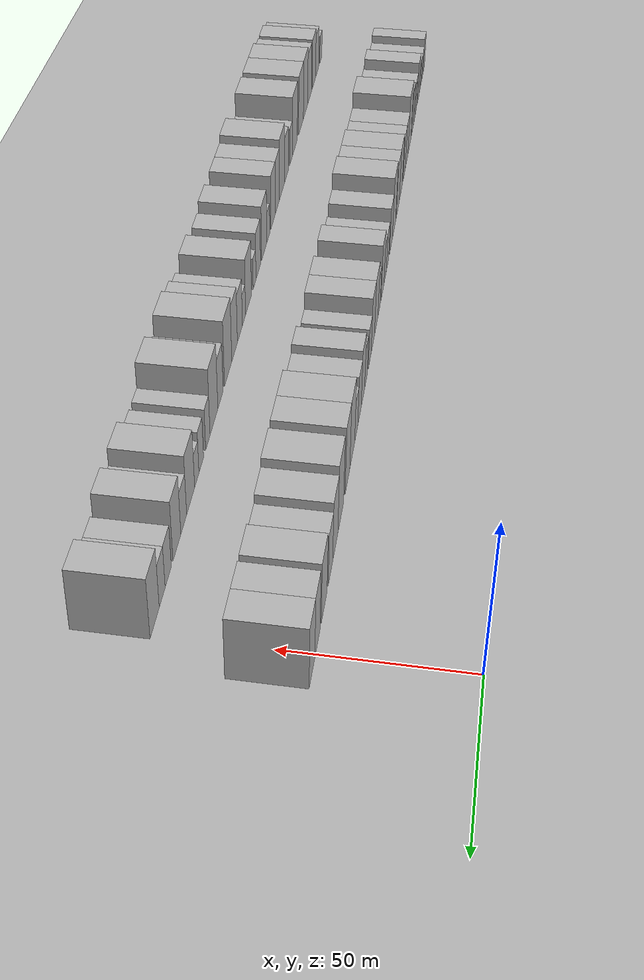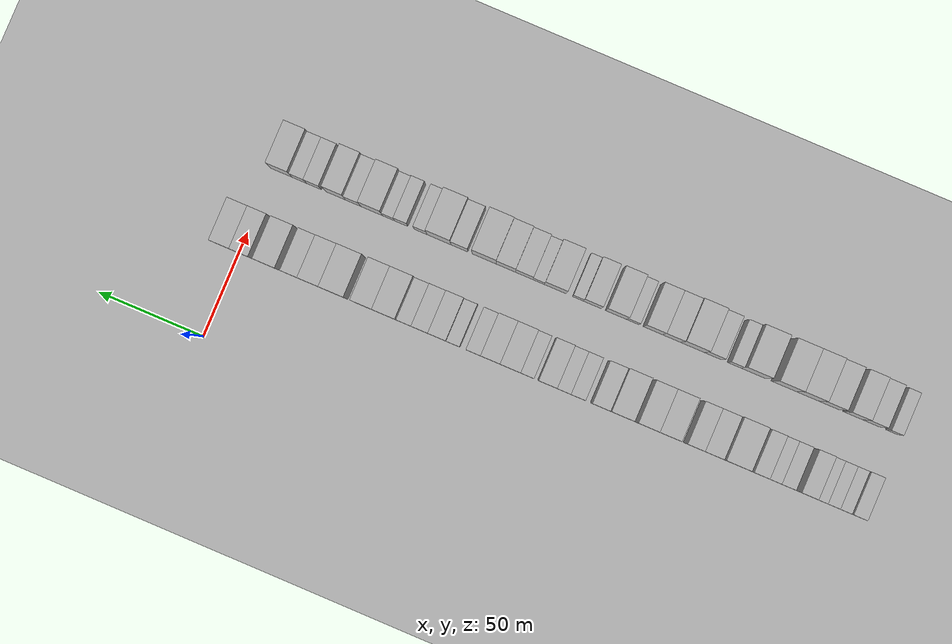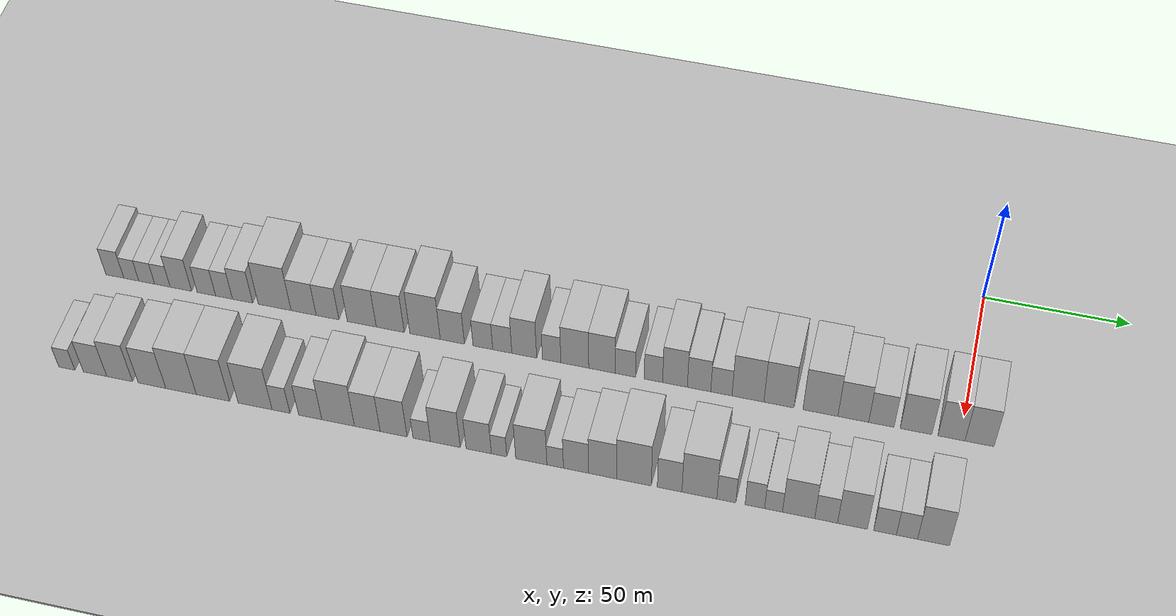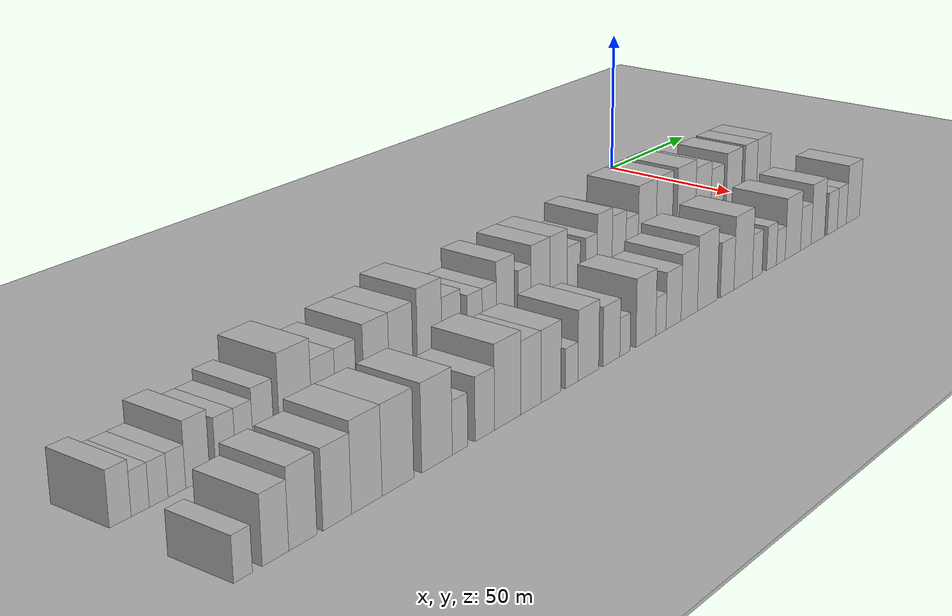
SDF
<sdf version="1.6">
 <world name="default">
  <include><name>ground_plane_1</name><uri>model://HANNAS_ground_plane</uri></include>
  <include>
   <name>ground_plane_2</name>
   <uri>model://HANNAS_ground_plane</uri>
   <pose>100 0 0  0 0 0</pose>
  </include>
  <model name="building_1">
   <static>1</static>
   <pose>50.0000 -293.7207 0 0.000000 0.000000 0.000000</pose>
   <link name="link">
    <pose>0 0 7.50 0 0 0</pose>
    <collision name="collision"><geometry><box><size>20.0000 6.5586 15.0000</size></box></geometry></collision>
    <visual name="visual">
     <cast_shadows>0</cast_shadows>
     <geometry><box><size>20.0000 6.5586 15.0000</size></box></geometry>
     <material>
      <script>
       <uri>model://HANNAS_wall/materials/scripts</uri>
       <uri>model://HANNAS_wall/materials/textures</uri>
       <name>vrc/HANNAS_wall</name>
      </script>
     </material>
    </visual>
   </link>
  </model>
  <model name="building_2">
   <static>1</static>
   <pose>50.0000 -287.6814 0 0.000000 0.000000 0.000000</pose>
   <link name="link">
    <pose>0 0 6.00 0 0 0</pose>
    <collision name="collision"><geometry><box><size>20.0000 5.5199 12.0000</size></box></geometry></collision>
    <visual name="visual">
     <cast_shadows>0</cast_shadows>
     <geometry><box><size>20.0000 5.5199 12.0000</size></box></geometry>
     <material>
      <script>
       <uri>model://HANNAS_wall/materials/scripts</uri>
       <uri>model://HANNAS_wall/materials/textures</uri>
       <name>vrc/HANNAS_wall</name>
      </script>
     </material>
    </visual>
   </link>
  </model>
  <model name="building_3">
   <static>1</static>
   <pose>50.0000 -282.0184 0 0.000000 0.000000 0.000000</pose>
   <link name="link">
    <pose>0 0 6.00 0 0 0</pose>
    <collision name="collision"><geometry><box><size>20.0000 5.8060 12.0000</size></box></geometry></collision>
    <visual name="visual">
     <cast_shadows>0</cast_shadows>
     <geometry><box><size>20.0000 5.8060 12.0000</size></box></geometry>
     <material>
      <script>
       <uri>model://HANNAS_wall/materials/scripts</uri>
       <uri>model://HANNAS_wall/materials/textures</uri>
       <name>vrc/HANNAS_wall</name>
      </script>
     </material>
    </visual>
   </link>
  </model>
  <model name="building_4">
   <static>1</static>
   <pose>50.0000 -276.2854 0 0.000000 0.000000 0.000000</pose>
   <link name="link">
    <pose>0 0 6.00 0 0 0</pose>
    <collision name="collision"><geometry><box><size>20.0000 5.6601 12.0000</size></box></geometry></collision>
    <visual name="visual">
     <cast_shadows>0</cast_shadows>
     <geometry><box><size>20.0000 5.6601 12.0000</size></box></geometry>
     <material>
      <script>
       <uri>model://HANNAS_wall/materials/scripts</uri>
       <uri>model://HANNAS_wall/materials/textures</uri>
       <name>vrc/HANNAS_wall</name>
      </script>
     </material>
    </visual>
   </link>
  </model>
  <model name="building_5">
   <static>1</static>
   <pose>50.0000 -269.5465 0 0.000000 0.000000 0.000000</pose>
   <link name="link">
    <pose>0 0 9.00 0 0 0</pose>
    <collision name="collision"><geometry><box><size>20.0000 7.8177 18.0000</size></box></geometry></collision>
    <visual name="visual">
     <cast_shadows>0</cast_shadows>
     <geometry><box><size>20.0000 7.8177 18.0000</size></box></geometry>
     <material>
      <script>
       <uri>model://HANNAS_wall/materials/scripts</uri>
       <uri>model://HANNAS_wall/materials/textures</uri>
       <name>vrc/HANNAS_wall</name>
      </script>
     </material>
    </visual>
   </link>
  </model>
  <model name="building_6">
   <static>1</static>
   <pose>50.0000 -260.2850 0 0.000000 0.000000 0.000000</pose>
   <link name="link">
    <pose>0 0 7.50 0 0 0</pose>
    <collision name="collision"><geometry><box><size>20.0000 6.7053 15.0000</size></box></geometry></collision>
    <visual name="visual">
     <cast_shadows>0</cast_shadows>
     <geometry><box><size>20.0000 6.7053 15.0000</size></box></geometry>
     <material>
      <script>
       <uri>model://HANNAS_wall/materials/scripts</uri>
       <uri>model://HANNAS_wall/materials/textures</uri>
       <name>vrc/HANNAS_wall</name>
      </script>
     </material>
    </visual>
   </link>
  </model>
  <model name="building_7">
   <static>1</static>
   <pose>50.0000 -253.8806 0 0.000000 0.000000 0.000000</pose>
   <link name="link">
    <pose>0 0 7.50 0 0 0</pose>
    <collision name="collision"><geometry><box><size>20.0000 6.1035 15.0000</size></box></geometry></collision>
    <visual name="visual">
     <cast_shadows>0</cast_shadows>
     <geometry><box><size>20.0000 6.1035 15.0000</size></box></geometry>
     <material>
      <script>
       <uri>model://HANNAS_wall/materials/scripts</uri>
       <uri>model://HANNAS_wall/materials/textures</uri>
       <name>vrc/HANNAS_wall</name>
      </script>
     </material>
    </visual>
   </link>
  </model>
  <model name="building_8">
   <static>1</static>
   <pose>50.0000 -247.1774 0 0.000000 0.000000 0.000000</pose>
   <link name="link">
    <pose>0 0 9.00 0 0 0</pose>
    <collision name="collision"><geometry><box><size>20.0000 7.3030 18.0000</size></box></geometry></collision>
    <visual name="visual">
     <cast_shadows>0</cast_shadows>
     <geometry><box><size>20.0000 7.3030 18.0000</size></box></geometry>
     <material>
      <script>
       <uri>model://HANNAS_wall/materials/scripts</uri>
       <uri>model://HANNAS_wall/materials/textures</uri>
       <name>vrc/HANNAS_wall</name>
      </script>
     </material>
    </visual>
   </link>
  </model>
  <model name="building_9">
   <static>1</static>
   <pose>50.0000 -235.6194 0 0.000000 0.000000 0.000000</pose>
   <link name="link">
    <pose>0 0 12.00 0 0 0</pose>
    <collision name="collision"><geometry><box><size>20.0000 11.8131 24.0000</size></box></geometry></collision>
    <visual name="visual">
     <cast_shadows>0</cast_shadows>
     <geometry><box><size>20.0000 11.8131 24.0000</size></box></geometry>
     <material>
      <script>
       <uri>model://HANNAS_wall/materials/scripts</uri>
       <uri>model://HANNAS_wall/materials/textures</uri>
       <name>vrc/HANNAS_wall</name>
      </script>
     </material>
    </visual>
   </link>
  </model>
  <model name="building_10">
   <static>1</static>
   <pose>50.0000 -225.2220 0 0.000000 0.000000 0.000000</pose>
   <link name="link">
    <pose>0 0 9.00 0 0 0</pose>
    <collision name="collision"><geometry><box><size>20.0000 8.9816 18.0000</size></box></geometry></collision>
    <visual name="visual">
     <cast_shadows>0</cast_shadows>
     <geometry><box><size>20.0000 8.9816 18.0000</size></box></geometry>
     <material>
      <script>
       <uri>model://HANNAS_wall/materials/scripts</uri>
       <uri>model://HANNAS_wall/materials/textures</uri>
       <name>vrc/HANNAS_wall</name>
      </script>
     </material>
    </visual>
   </link>
  </model>
  <model name="building_11">
   <static>1</static>
   <pose>50.0000 -216.6811 0 0.000000 0.000000 0.000000</pose>
   <link name="link">
    <pose>0 0 9.00 0 0 0</pose>
    <collision name="collision"><geometry><box><size>20.0000 8.1002 18.0000</size></box></geometry></collision>
    <visual name="visual">
     <cast_shadows>0</cast_shadows>
     <geometry><box><size>20.0000 8.1002 18.0000</size></box></geometry>
     <material>
      <script>
       <uri>model://HANNAS_wall/materials/scripts</uri>
       <uri>model://HANNAS_wall/materials/textures</uri>
       <name>vrc/HANNAS_wall</name>
      </script>
     </material>
    </visual>
   </link>
  </model>
  <model name="building_12">
   <static>1</static>
   <pose>50.0000 -204.4950 0 0.000000 0.000000 0.000000</pose>
   <link name="link">
    <pose>0 0 10.50 0 0 0</pose>
    <collision name="collision"><geometry><box><size>20.0000 10.2720 21.0000</size></box></geometry></collision>
    <visual name="visual">
     <cast_shadows>0</cast_shadows>
     <geometry><box><size>20.0000 10.2720 21.0000</size></box></geometry>
     <material>
      <script>
       <uri>model://HANNAS_wall/materials/scripts</uri>
       <uri>model://HANNAS_wall/materials/textures</uri>
       <name>vrc/HANNAS_wall</name>
      </script>
     </material>
    </visual>
   </link>
  </model>
  <model name="building_13">
   <static>1</static>
   <pose>50.0000 -194.3998 0 0.000000 0.000000 0.000000</pose>
   <link name="link">
    <pose>0 0 10.50 0 0 0</pose>
    <collision name="collision"><geometry><box><size>20.0000 9.9184 21.0000</size></box></geometry></collision>
    <visual name="visual">
     <cast_shadows>0</cast_shadows>
     <geometry><box><size>20.0000 9.9184 21.0000</size></box></geometry>
     <material>
      <script>
       <uri>model://HANNAS_wall/materials/scripts</uri>
       <uri>model://HANNAS_wall/materials/textures</uri>
       <name>vrc/HANNAS_wall</name>
      </script>
     </material>
    </visual>
   </link>
  </model>
  <model name="building_14">
   <static>1</static>
   <pose>50.0000 -182.0912 0 0.000000 0.000000 0.000000</pose>
   <link name="link">
    <pose>0 0 12.00 0 0 0</pose>
    <collision name="collision"><geometry><box><size>20.0000 10.6989 24.0000</size></box></geometry></collision>
    <visual name="visual">
     <cast_shadows>0</cast_shadows>
     <geometry><box><size>20.0000 10.6989 24.0000</size></box></geometry>
     <material>
      <script>
       <uri>model://HANNAS_wall/materials/scripts</uri>
       <uri>model://HANNAS_wall/materials/textures</uri>
       <name>vrc/HANNAS_wall</name>
      </script>
     </material>
    </visual>
   </link>
  </model>
  <model name="building_15">
   <static>1</static>
   <pose>50.0000 -172.4970 0 0.000000 0.000000 0.000000</pose>
   <link name="link">
    <pose>0 0 9.00 0 0 0</pose>
    <collision name="collision"><geometry><box><size>20.0000 8.4894 18.0000</size></box></geometry></collision>
    <visual name="visual">
     <cast_shadows>0</cast_shadows>
     <geometry><box><size>20.0000 8.4894 18.0000</size></box></geometry>
     <material>
      <script>
       <uri>model://HANNAS_wall/materials/scripts</uri>
       <uri>model://HANNAS_wall/materials/textures</uri>
       <name>vrc/HANNAS_wall</name>
      </script>
     </material>
    </visual>
   </link>
  </model>
  <model name="building_16">
   <static>1</static>
   <pose>50.0000 -161.8119 0 0.000000 0.000000 0.000000</pose>
   <link name="link">
    <pose>0 0 7.50 0 0 0</pose>
    <collision name="collision"><geometry><box><size>20.0000 6.8809 15.0000</size></box></geometry></collision>
    <visual name="visual">
     <cast_shadows>0</cast_shadows>
     <geometry><box><size>20.0000 6.8809 15.0000</size></box></geometry>
     <material>
      <script>
       <uri>model://HANNAS_wall/materials/scripts</uri>
       <uri>model://HANNAS_wall/materials/textures</uri>
       <name>vrc/HANNAS_wall</name>
      </script>
     </material>
    </visual>
   </link>
  </model>
  <model name="building_17">
   <static>1</static>
   <pose>50.0000 -155.0350 0 0.000000 0.000000 0.000000</pose>
   <link name="link">
    <pose>0 0 7.50 0 0 0</pose>
    <collision name="collision"><geometry><box><size>20.0000 6.6728 15.0000</size></box></geometry></collision>
    <visual name="visual">
     <cast_shadows>0</cast_shadows>
     <geometry><box><size>20.0000 6.6728 15.0000</size></box></geometry>
     <material>
      <script>
       <uri>model://HANNAS_wall/materials/scripts</uri>
       <uri>model://HANNAS_wall/materials/textures</uri>
       <name>vrc/HANNAS_wall</name>
      </script>
     </material>
    </visual>
   </link>
  </model>
  <model name="building_18">
   <static>1</static>
   <pose>50.0000 -147.3848 0 0.000000 0.000000 0.000000</pose>
   <link name="link">
    <pose>0 0 10.50 0 0 0</pose>
    <collision name="collision"><geometry><box><size>20.0000 8.6277 21.0000</size></box></geometry></collision>
    <visual name="visual">
     <cast_shadows>0</cast_shadows>
     <geometry><box><size>20.0000 8.6277 21.0000</size></box></geometry>
     <material>
      <script>
       <uri>model://HANNAS_wall/materials/scripts</uri>
       <uri>model://HANNAS_wall/materials/textures</uri>
       <name>vrc/HANNAS_wall</name>
      </script>
     </material>
    </visual>
   </link>
  </model>
  <model name="building_19">
   <static>1</static>
   <pose>50.0000 -137.8836 0 0.000000 0.000000 0.000000</pose>
   <link name="link">
    <pose>0 0 7.50 0 0 0</pose>
    <collision name="collision"><geometry><box><size>20.0000 6.3746 15.0000</size></box></geometry></collision>
    <visual name="visual">
     <cast_shadows>0</cast_shadows>
     <geometry><box><size>20.0000 6.3746 15.0000</size></box></geometry>
     <material>
      <script>
       <uri>model://HANNAS_wall/materials/scripts</uri>
       <uri>model://HANNAS_wall/materials/textures</uri>
       <name>vrc/HANNAS_wall</name>
      </script>
     </material>
    </visual>
   </link>
  </model>
  <model name="building_20">
   <static>1</static>
   <pose>50.0000 -129.8933 0 0.000000 0.000000 0.000000</pose>
   <link name="link">
    <pose>0 0 10.50 0 0 0</pose>
    <collision name="collision"><geometry><box><size>20.0000 9.6060 21.0000</size></box></geometry></collision>
    <visual name="visual">
     <cast_shadows>0</cast_shadows>
     <geometry><box><size>20.0000 9.6060 21.0000</size></box></geometry>
     <material>
      <script>
       <uri>model://HANNAS_wall/materials/scripts</uri>
       <uri>model://HANNAS_wall/materials/textures</uri>
       <name>vrc/HANNAS_wall</name>
      </script>
     </material>
    </visual>
   </link>
  </model>
  <model name="building_21">
   <static>1</static>
   <pose>50.0000 -120.5425 0 0.000000 0.000000 0.000000</pose>
   <link name="link">
    <pose>0 0 10.50 0 0 0</pose>
    <collision name="collision"><geometry><box><size>20.0000 9.0956 21.0000</size></box></geometry></collision>
    <visual name="visual">
     <cast_shadows>0</cast_shadows>
     <geometry><box><size>20.0000 9.0956 21.0000</size></box></geometry>
     <material>
      <script>
       <uri>model://HANNAS_wall/materials/scripts</uri>
       <uri>model://HANNAS_wall/materials/textures</uri>
       <name>vrc/HANNAS_wall</name>
      </script>
     </material>
    </visual>
   </link>
  </model>
  <model name="building_22">
   <static>1</static>
   <pose>50.0000 -112.5203 0 0.000000 0.000000 0.000000</pose>
   <link name="link">
    <pose>0 0 7.50 0 0 0</pose>
    <collision name="collision"><geometry><box><size>20.0000 6.9490 15.0000</size></box></geometry></collision>
    <visual name="visual">
     <cast_shadows>0</cast_shadows>
     <geometry><box><size>20.0000 6.9490 15.0000</size></box></geometry>
     <material>
      <script>
       <uri>model://HANNAS_wall/materials/scripts</uri>
       <uri>model://HANNAS_wall/materials/textures</uri>
       <name>vrc/HANNAS_wall</name>
      </script>
     </material>
    </visual>
   </link>
  </model>
  <model name="building_23">
   <static>1</static>
   <pose>50.0000 -102.9059 0 0.000000 0.000000 0.000000</pose>
   <link name="link">
    <pose>0 0 7.50 0 0 0</pose>
    <collision name="collision"><geometry><box><size>20.0000 6.2797 15.0000</size></box></geometry></collision>
    <visual name="visual">
     <cast_shadows>0</cast_shadows>
     <geometry><box><size>20.0000 6.2797 15.0000</size></box></geometry>
     <material>
      <script>
       <uri>model://HANNAS_wall/materials/scripts</uri>
       <uri>model://HANNAS_wall/materials/textures</uri>
       <name>vrc/HANNAS_wall</name>
      </script>
     </material>
    </visual>
   </link>
  </model>
  <model name="building_24">
   <static>1</static>
   <pose>50.0000 -95.5656 0 0.000000 0.000000 0.000000</pose>
   <link name="link">
    <pose>0 0 10.50 0 0 0</pose>
    <collision name="collision"><geometry><box><size>20.0000 8.4011 21.0000</size></box></geometry></collision>
    <visual name="visual">
     <cast_shadows>0</cast_shadows>
     <geometry><box><size>20.0000 8.4011 21.0000</size></box></geometry>
     <material>
      <script>
       <uri>model://HANNAS_wall/materials/scripts</uri>
       <uri>model://HANNAS_wall/materials/textures</uri>
       <name>vrc/HANNAS_wall</name>
      </script>
     </material>
    </visual>
   </link>
  </model>
  <model name="building_25">
   <static>1</static>
   <pose>50.0000 -87.3929 0 0.000000 0.000000 0.000000</pose>
   <link name="link">
    <pose>0 0 9.00 0 0 0</pose>
    <collision name="collision"><geometry><box><size>20.0000 7.9442 18.0000</size></box></geometry></collision>
    <visual name="visual">
     <cast_shadows>0</cast_shadows>
     <geometry><box><size>20.0000 7.9442 18.0000</size></box></geometry>
     <material>
      <script>
       <uri>model://HANNAS_wall/materials/scripts</uri>
       <uri>model://HANNAS_wall/materials/textures</uri>
       <name>vrc/HANNAS_wall</name>
      </script>
     </material>
    </visual>
   </link>
  </model>
  <model name="building_26">
   <static>1</static>
   <pose>50.0000 -79.8301 0 0.000000 0.000000 0.000000</pose>
   <link name="link">
    <pose>0 0 7.50 0 0 0</pose>
    <collision name="collision"><geometry><box><size>20.0000 7.1815 15.0000</size></box></geometry></collision>
    <visual name="visual">
     <cast_shadows>0</cast_shadows>
     <geometry><box><size>20.0000 7.1815 15.0000</size></box></geometry>
     <material>
      <script>
       <uri>model://HANNAS_wall/materials/scripts</uri>
       <uri>model://HANNAS_wall/materials/textures</uri>
       <name>vrc/HANNAS_wall</name>
      </script>
     </material>
    </visual>
   </link>
  </model>
  <model name="building_27">
   <static>1</static>
   <pose>50.0000 -70.8516 0 0.000000 0.000000 0.000000</pose>
   <link name="link">
    <pose>0 0 12.00 0 0 0</pose>
    <collision name="collision"><geometry><box><size>20.0000 10.7755 24.0000</size></box></geometry></collision>
    <visual name="visual">
     <cast_shadows>0</cast_shadows>
     <geometry><box><size>20.0000 10.7755 24.0000</size></box></geometry>
     <material>
      <script>
       <uri>model://HANNAS_wall/materials/scripts</uri>
       <uri>model://HANNAS_wall/materials/textures</uri>
       <name>vrc/HANNAS_wall</name>
      </script>
     </material>
    </visual>
   </link>
  </model>
  <model name="building_28">
   <static>1</static>
   <pose>50.0000 -60.4129 0 0.000000 0.000000 0.000000</pose>
   <link name="link">
    <pose>0 0 12.00 0 0 0</pose>
    <collision name="collision"><geometry><box><size>20.0000 10.1017 24.0000</size></box></geometry></collision>
    <visual name="visual">
     <cast_shadows>0</cast_shadows>
     <geometry><box><size>20.0000 10.1017 24.0000</size></box></geometry>
     <material>
      <script>
       <uri>model://HANNAS_wall/materials/scripts</uri>
       <uri>model://HANNAS_wall/materials/textures</uri>
       <name>vrc/HANNAS_wall</name>
      </script>
     </material>
    </visual>
   </link>
  </model>
  <model name="building_29">
   <static>1</static>
   <pose>50.0000 -46.5263 0 0.000000 0.000000 0.000000</pose>
   <link name="link">
    <pose>0 0 12.00 0 0 0</pose>
    <collision name="collision"><geometry><box><size>20.0000 11.6716 24.0000</size></box></geometry></collision>
    <visual name="visual">
     <cast_shadows>0</cast_shadows>
     <geometry><box><size>20.0000 11.6716 24.0000</size></box></geometry>
     <material>
      <script>
       <uri>model://HANNAS_wall/materials/scripts</uri>
       <uri>model://HANNAS_wall/materials/textures</uri>
       <name>vrc/HANNAS_wall</name>
      </script>
     </material>
    </visual>
   </link>
  </model>
  <model name="building_30">
   <static>1</static>
   <pose>50.0000 -35.5764 0 0.000000 0.000000 0.000000</pose>
   <link name="link">
    <pose>0 0 10.50 0 0 0</pose>
    <collision name="collision"><geometry><box><size>20.0000 10.2283 21.0000</size></box></geometry></collision>
    <visual name="visual">
     <cast_shadows>0</cast_shadows>
     <geometry><box><size>20.0000 10.2283 21.0000</size></box></geometry>
     <material>
      <script>
       <uri>model://HANNAS_wall/materials/scripts</uri>
       <uri>model://HANNAS_wall/materials/textures</uri>
       <name>vrc/HANNAS_wall</name>
      </script>
     </material>
    </visual>
   </link>
  </model>
  <model name="building_31">
   <static>1</static>
   <pose>50.0000 -26.2525 0 0.000000 0.000000 0.000000</pose>
   <link name="link">
    <pose>0 0 9.00 0 0 0</pose>
    <collision name="collision"><geometry><box><size>20.0000 8.4193 18.0000</size></box></geometry></collision>
    <visual name="visual">
     <cast_shadows>0</cast_shadows>
     <geometry><box><size>20.0000 8.4193 18.0000</size></box></geometry>
     <material>
      <script>
       <uri>model://HANNAS_wall/materials/scripts</uri>
       <uri>model://HANNAS_wall/materials/textures</uri>
       <name>vrc/HANNAS_wall</name>
      </script>
     </material>
    </visual>
   </link>
  </model>
  <model name="building_32">
   <static>1</static>
   <pose>50.0000 -14.8078 0 0.000000 0.000000 0.000000</pose>
   <link name="link">
    <pose>0 0 10.50 0 0 0</pose>
    <collision name="collision"><geometry><box><size>20.0000 10.4703 21.0000</size></box></geometry></collision>
    <visual name="visual">
     <cast_shadows>0</cast_shadows>
     <geometry><box><size>20.0000 10.4703 21.0000</size></box></geometry>
     <material>
      <script>
       <uri>model://HANNAS_wall/materials/scripts</uri>
       <uri>model://HANNAS_wall/materials/textures</uri>
       <name>vrc/HANNAS_wall</name>
      </script>
     </material>
    </visual>
   </link>
  </model>
  <model name="building_33">
   <static>1</static>
   <pose>50.0000 -3.1432 0 0.000000 0.000000 0.000000</pose>
   <link name="link">
    <pose>0 0 10.50 0 0 0</pose>
    <collision name="collision"><geometry><box><size>20.0000 8.8589 21.0000</size></box></geometry></collision>
    <visual name="visual">
     <cast_shadows>0</cast_shadows>
     <geometry><box><size>20.0000 8.8589 21.0000</size></box></geometry>
     <material>
      <script>
       <uri>model://HANNAS_wall/materials/scripts</uri>
       <uri>model://HANNAS_wall/materials/textures</uri>
       <name>vrc/HANNAS_wall</name>
      </script>
     </material>
    </visual>
   </link>
  </model>
  <model name="building_34">
   <static>1</static>
   <pose>50.0000 6.0466 0 0.000000 0.000000 0.000000</pose>
   <link name="link">
    <pose>0 0 10.50 0 0 0</pose>
    <collision name="collision"><geometry><box><size>20.0000 9.5208 21.0000</size></box></geometry></collision>
    <visual name="visual">
     <cast_shadows>0</cast_shadows>
     <geometry><box><size>20.0000 9.5208 21.0000</size></box></geometry>
     <material>
      <script>
       <uri>model://HANNAS_wall/materials/scripts</uri>
       <uri>model://HANNAS_wall/materials/textures</uri>
       <name>vrc/HANNAS_wall</name>
      </script>
     </material>
    </visual>
   </link>
  </model>
  <model name="building_69">
   <static>1</static>
   <pose>90.0000 -295.1282 0 0.000000 0.000000 0.000000</pose>
   <link name="link">
    <pose>0 0 6.00 0 0 0</pose>
    <collision name="collision"><geometry><box><size>20.0000 5.7437 12.0000</size></box></geometry></collision>
    <visual name="visual">
     <cast_shadows>0</cast_shadows>
     <geometry><box><size>20.0000 5.7437 12.0000</size></box></geometry>
     <material>
      <script>
       <uri>model://HANNAS_wall/materials/scripts</uri>
       <uri>model://HANNAS_wall/materials/textures</uri>
       <name>vrc/HANNAS_wall</name>
      </script>
     </material>
    </visual>
   </link>
  </model>
  <model name="building_70">
   <static>1</static>
   <pose>90.0000 -285.0855 0 0.000000 0.000000 0.000000</pose>
   <link name="link">
    <pose>0 0 9.00 0 0 0</pose>
    <collision name="collision"><geometry><box><size>20.0000 8.3417 18.0000</size></box></geometry></collision>
    <visual name="visual">
     <cast_shadows>0</cast_shadows>
     <geometry><box><size>20.0000 8.3417 18.0000</size></box></geometry>
     <material>
      <script>
       <uri>model://HANNAS_wall/materials/scripts</uri>
       <uri>model://HANNAS_wall/materials/textures</uri>
       <name>vrc/HANNAS_wall</name>
      </script>
     </material>
    </visual>
   </link>
  </model>
  <model name="building_71">
   <static>1</static>
   <pose>90.0000 -276.3613 0 0.000000 0.000000 0.000000</pose>
   <link name="link">
    <pose>0 0 10.50 0 0 0</pose>
    <collision name="collision"><geometry><box><size>20.0000 9.1067 21.0000</size></box></geometry></collision>
    <visual name="visual">
     <cast_shadows>0</cast_shadows>
     <geometry><box><size>20.0000 9.1067 21.0000</size></box></geometry>
     <material>
      <script>
       <uri>model://HANNAS_wall/materials/scripts</uri>
       <uri>model://HANNAS_wall/materials/textures</uri>
       <name>vrc/HANNAS_wall</name>
      </script>
     </material>
    </visual>
   </link>
  </model>
  <model name="building_72">
   <static>1</static>
   <pose>90.0000 -264.9593 0 0.000000 0.000000 0.000000</pose>
   <link name="link">
    <pose>0 0 10.50 0 0 0</pose>
    <collision name="collision"><geometry><box><size>20.0000 9.6972 21.0000</size></box></geometry></collision>
    <visual name="visual">
     <cast_shadows>0</cast_shadows>
     <geometry><box><size>20.0000 9.6972 21.0000</size></box></geometry>
     <material>
      <script>
       <uri>model://HANNAS_wall/materials/scripts</uri>
       <uri>model://HANNAS_wall/materials/textures</uri>
       <name>vrc/HANNAS_wall</name>
      </script>
     </material>
    </visual>
   </link>
  </model>
  <model name="building_73">
   <static>1</static>
   <pose>90.0000 -254.7268 0 0.000000 0.000000 0.000000</pose>
   <link name="link">
    <pose>0 0 12.00 0 0 0</pose>
    <collision name="collision"><geometry><box><size>20.0000 10.7678 24.0000</size></box></geometry></collision>
    <visual name="visual">
     <cast_shadows>0</cast_shadows>
     <geometry><box><size>20.0000 10.7678 24.0000</size></box></geometry>
     <material>
      <script>
       <uri>model://HANNAS_wall/materials/scripts</uri>
       <uri>model://HANNAS_wall/materials/textures</uri>
       <name>vrc/HANNAS_wall</name>
      </script>
     </material>
    </visual>
   </link>
  </model>
  <model name="building_74">
   <static>1</static>
   <pose>90.0000 -243.5399 0 0.000000 0.000000 0.000000</pose>
   <link name="link">
    <pose>0 0 12.00 0 0 0</pose>
    <collision name="collision"><geometry><box><size>20.0000 11.6060 24.0000</size></box></geometry></collision>
    <visual name="visual">
     <cast_shadows>0</cast_shadows>
     <geometry><box><size>20.0000 11.6060 24.0000</size></box></geometry>
     <material>
      <script>
       <uri>model://HANNAS_wall/materials/scripts</uri>
       <uri>model://HANNAS_wall/materials/textures</uri>
       <name>vrc/HANNAS_wall</name>
      </script>
     </material>
    </visual>
   </link>
  </model>
  <model name="building_75">
   <static>1</static>
   <pose>90.0000 -228.8288 0 0.000000 0.000000 0.000000</pose>
   <link name="link">
    <pose>0 0 12.00 0 0 0</pose>
    <collision name="collision"><geometry><box><size>20.0000 11.8162 24.0000</size></box></geometry></collision>
    <visual name="visual">
     <cast_shadows>0</cast_shadows>
     <geometry><box><size>20.0000 11.8162 24.0000</size></box></geometry>
     <material>
      <script>
       <uri>model://HANNAS_wall/materials/scripts</uri>
       <uri>model://HANNAS_wall/materials/textures</uri>
       <name>vrc/HANNAS_wall</name>
      </script>
     </material>
    </visual>
   </link>
  </model>
  <model name="building_76">
   <static>1</static>
   <pose>90.0000 -219.8242 0 0.000000 0.000000 0.000000</pose>
   <link name="link">
    <pose>0 0 7.50 0 0 0</pose>
    <collision name="collision"><geometry><box><size>20.0000 6.1930 15.0000</size></box></geometry></collision>
    <visual name="visual">
     <cast_shadows>0</cast_shadows>
     <geometry><box><size>20.0000 6.1930 15.0000</size></box></geometry>
     <material>
      <script>
       <uri>model://HANNAS_wall/materials/scripts</uri>
       <uri>model://HANNAS_wall/materials/textures</uri>
       <name>vrc/HANNAS_wall</name>
      </script>
     </material>
    </visual>
   </link>
  </model>
  <model name="building_77">
   <static>1</static>
   <pose>90.0000 -209.7221 0 0.000000 0.000000 0.000000</pose>
   <link name="link">
    <pose>0 0 9.00 0 0 0</pose>
    <collision name="collision"><geometry><box><size>20.0000 8.0110 18.0000</size></box></geometry></collision>
    <visual name="visual">
     <cast_shadows>0</cast_shadows>
     <geometry><box><size>20.0000 8.0110 18.0000</size></box></geometry>
     <material>
      <script>
       <uri>model://HANNAS_wall/materials/scripts</uri>
       <uri>model://HANNAS_wall/materials/textures</uri>
       <name>vrc/HANNAS_wall</name>
      </script>
     </material>
    </visual>
   </link>
  </model>
  <model name="building_78">
   <static>1</static>
   <pose>90.0000 -200.0910 0 0.000000 0.000000 0.000000</pose>
   <link name="link">
    <pose>0 0 12.00 0 0 0</pose>
    <collision name="collision"><geometry><box><size>20.0000 11.2513 24.0000</size></box></geometry></collision>
    <visual name="visual">
     <cast_shadows>0</cast_shadows>
     <geometry><box><size>20.0000 11.2513 24.0000</size></box></geometry>
     <material>
      <script>
       <uri>model://HANNAS_wall/materials/scripts</uri>
       <uri>model://HANNAS_wall/materials/textures</uri>
       <name>vrc/HANNAS_wall</name>
      </script>
     </material>
    </visual>
   </link>
  </model>
  <model name="building_79">
   <static>1</static>
   <pose>90.0000 -190.0800 0 0.000000 0.000000 0.000000</pose>
   <link name="link">
    <pose>0 0 10.50 0 0 0</pose>
    <collision name="collision"><geometry><box><size>20.0000 8.7706 21.0000</size></box></geometry></collision>
    <visual name="visual">
     <cast_shadows>0</cast_shadows>
     <geometry><box><size>20.0000 8.7706 21.0000</size></box></geometry>
     <material>
      <script>
       <uri>model://HANNAS_wall/materials/scripts</uri>
       <uri>model://HANNAS_wall/materials/textures</uri>
       <name>vrc/HANNAS_wall</name>
      </script>
     </material>
    </visual>
   </link>
  </model>
  <model name="building_80">
   <static>1</static>
   <pose>90.0000 -181.0978 0 0.000000 0.000000 0.000000</pose>
   <link name="link">
    <pose>0 0 10.50 0 0 0</pose>
    <collision name="collision"><geometry><box><size>20.0000 9.1938 21.0000</size></box></geometry></collision>
    <visual name="visual">
     <cast_shadows>0</cast_shadows>
     <geometry><box><size>20.0000 9.1938 21.0000</size></box></geometry>
     <material>
      <script>
       <uri>model://HANNAS_wall/materials/scripts</uri>
       <uri>model://HANNAS_wall/materials/textures</uri>
       <name>vrc/HANNAS_wall</name>
      </script>
     </material>
    </visual>
   </link>
  </model>
  <model name="building_81">
   <static>1</static>
   <pose>90.0000 -171.5337 0 0.000000 0.000000 0.000000</pose>
   <link name="link">
    <pose>0 0 6.00 0 0 0</pose>
    <collision name="collision"><geometry><box><size>20.0000 5.9344 12.0000</size></box></geometry></collision>
    <visual name="visual">
     <cast_shadows>0</cast_shadows>
     <geometry><box><size>20.0000 5.9344 12.0000</size></box></geometry>
     <material>
      <script>
       <uri>model://HANNAS_wall/materials/scripts</uri>
       <uri>model://HANNAS_wall/materials/textures</uri>
       <name>vrc/HANNAS_wall</name>
      </script>
     </material>
    </visual>
   </link>
  </model>
  <model name="building_82">
   <static>1</static>
   <pose>90.0000 -163.5370 0 0.000000 0.000000 0.000000</pose>
   <link name="link">
    <pose>0 0 10.50 0 0 0</pose>
    <collision name="collision"><geometry><box><size>20.0000 10.0590 21.0000</size></box></geometry></collision>
    <visual name="visual">
     <cast_shadows>0</cast_shadows>
     <geometry><box><size>20.0000 10.0590 21.0000</size></box></geometry>
     <material>
      <script>
       <uri>model://HANNAS_wall/materials/scripts</uri>
       <uri>model://HANNAS_wall/materials/textures</uri>
       <name>vrc/HANNAS_wall</name>
      </script>
     </material>
    </visual>
   </link>
  </model>
  <model name="building_83">
   <static>1</static>
   <pose>90.0000 -152.2550 0 0.000000 0.000000 0.000000</pose>
   <link name="link">
    <pose>0 0 9.00 0 0 0</pose>
    <collision name="collision"><geometry><box><size>20.0000 8.5050 18.0000</size></box></geometry></collision>
    <visual name="visual">
     <cast_shadows>0</cast_shadows>
     <geometry><box><size>20.0000 8.5050 18.0000</size></box></geometry>
     <material>
      <script>
       <uri>model://HANNAS_wall/materials/scripts</uri>
       <uri>model://HANNAS_wall/materials/textures</uri>
       <name>vrc/HANNAS_wall</name>
      </script>
     </material>
    </visual>
   </link>
  </model>
  <model name="building_84">
   <static>1</static>
   <pose>90.0000 -145.3968 0 0.000000 0.000000 0.000000</pose>
   <link name="link">
    <pose>0 0 6.00 0 0 0</pose>
    <collision name="collision"><geometry><box><size>20.0000 5.2114 12.0000</size></box></geometry></collision>
    <visual name="visual">
     <cast_shadows>0</cast_shadows>
     <geometry><box><size>20.0000 5.2114 12.0000</size></box></geometry>
     <material>
      <script>
       <uri>model://HANNAS_wall/materials/scripts</uri>
       <uri>model://HANNAS_wall/materials/textures</uri>
       <name>vrc/HANNAS_wall</name>
      </script>
     </material>
    </visual>
   </link>
  </model>
  <model name="building_85">
   <static>1</static>
   <pose>90.0000 -134.5724 0 0.000000 0.000000 0.000000</pose>
   <link name="link">
    <pose>0 0 10.50 0 0 0</pose>
    <collision name="collision"><geometry><box><size>20.0000 10.4373 21.0000</size></box></geometry></collision>
    <visual name="visual">
     <cast_shadows>0</cast_shadows>
     <geometry><box><size>20.0000 10.4373 21.0000</size></box></geometry>
     <material>
      <script>
       <uri>model://HANNAS_wall/materials/scripts</uri>
       <uri>model://HANNAS_wall/materials/textures</uri>
       <name>vrc/HANNAS_wall</name>
      </script>
     </material>
    </visual>
   </link>
  </model>
  <model name="building_86">
   <static>1</static>
   <pose>90.0000 -126.5986 0 0.000000 0.000000 0.000000</pose>
   <link name="link">
    <pose>0 0 6.00 0 0 0</pose>
    <collision name="collision"><geometry><box><size>20.0000 5.5104 12.0000</size></box></geometry></collision>
    <visual name="visual">
     <cast_shadows>0</cast_shadows>
     <geometry><box><size>20.0000 5.5104 12.0000</size></box></geometry>
     <material>
      <script>
       <uri>model://HANNAS_wall/materials/scripts</uri>
       <uri>model://HANNAS_wall/materials/textures</uri>
       <name>vrc/HANNAS_wall</name>
      </script>
     </material>
    </visual>
   </link>
  </model>
  <model name="building_87">
   <static>1</static>
   <pose>90.0000 -119.6577 0 0.000000 0.000000 0.000000</pose>
   <link name="link">
    <pose>0 0 9.00 0 0 0</pose>
    <collision name="collision"><geometry><box><size>20.0000 8.3714 18.0000</size></box></geometry></collision>
    <visual name="visual">
     <cast_shadows>0</cast_shadows>
     <geometry><box><size>20.0000 8.3714 18.0000</size></box></geometry>
     <material>
      <script>
       <uri>model://HANNAS_wall/materials/scripts</uri>
       <uri>model://HANNAS_wall/materials/textures</uri>
       <name>vrc/HANNAS_wall</name>
      </script>
     </material>
    </visual>
   </link>
  </model>
  <model name="building_88">
   <static>1</static>
   <pose>90.0000 -110.8665 0 0.000000 0.000000 0.000000</pose>
   <link name="link">
    <pose>0 0 10.50 0 0 0</pose>
    <collision name="collision"><geometry><box><size>20.0000 9.2111 21.0000</size></box></geometry></collision>
    <visual name="visual">
     <cast_shadows>0</cast_shadows>
     <geometry><box><size>20.0000 9.2111 21.0000</size></box></geometry>
     <material>
      <script>
       <uri>model://HANNAS_wall/materials/scripts</uri>
       <uri>model://HANNAS_wall/materials/textures</uri>
       <name>vrc/HANNAS_wall</name>
      </script>
     </material>
    </visual>
   </link>
  </model>
  <model name="building_89">
   <static>1</static>
   <pose>90.0000 -100.5035 0 0.000000 0.000000 0.000000</pose>
   <link name="link">
    <pose>0 0 12.00 0 0 0</pose>
    <collision name="collision"><geometry><box><size>20.0000 11.5151 24.0000</size></box></geometry></collision>
    <visual name="visual">
     <cast_shadows>0</cast_shadows>
     <geometry><box><size>20.0000 11.5151 24.0000</size></box></geometry>
     <material>
      <script>
       <uri>model://HANNAS_wall/materials/scripts</uri>
       <uri>model://HANNAS_wall/materials/textures</uri>
       <name>vrc/HANNAS_wall</name>
      </script>
     </material>
    </visual>
   </link>
  </model>
  <model name="building_90">
   <static>1</static>
   <pose>90.0000 -88.7004 0 0.000000 0.000000 0.000000</pose>
   <link name="link">
    <pose>0 0 9.00 0 0 0</pose>
    <collision name="collision"><geometry><box><size>20.0000 8.0909 18.0000</size></box></geometry></collision>
    <visual name="visual">
     <cast_shadows>0</cast_shadows>
     <geometry><box><size>20.0000 8.0909 18.0000</size></box></geometry>
     <material>
      <script>
       <uri>model://HANNAS_wall/materials/scripts</uri>
       <uri>model://HANNAS_wall/materials/textures</uri>
       <name>vrc/HANNAS_wall</name>
      </script>
     </material>
    </visual>
   </link>
  </model>
  <model name="building_91">
   <static>1</static>
   <pose>90.0000 -78.9290 0 0.000000 0.000000 0.000000</pose>
   <link name="link">
    <pose>0 0 12.00 0 0 0</pose>
    <collision name="collision"><geometry><box><size>20.0000 11.4519 24.0000</size></box></geometry></collision>
    <visual name="visual">
     <cast_shadows>0</cast_shadows>
     <geometry><box><size>20.0000 11.4519 24.0000</size></box></geometry>
     <material>
      <script>
       <uri>model://HANNAS_wall/materials/scripts</uri>
       <uri>model://HANNAS_wall/materials/textures</uri>
       <name>vrc/HANNAS_wall</name>
      </script>
     </material>
    </visual>
   </link>
  </model>
  <model name="building_92">
   <static>1</static>
   <pose>90.0000 -70.1134 0 0.000000 0.000000 0.000000</pose>
   <link name="link">
    <pose>0 0 7.50 0 0 0</pose>
    <collision name="collision"><geometry><box><size>20.0000 6.1793 15.0000</size></box></geometry></collision>
    <visual name="visual">
     <cast_shadows>0</cast_shadows>
     <geometry><box><size>20.0000 6.1793 15.0000</size></box></geometry>
     <material>
      <script>
       <uri>model://HANNAS_wall/materials/scripts</uri>
       <uri>model://HANNAS_wall/materials/textures</uri>
       <name>vrc/HANNAS_wall</name>
      </script>
     </material>
    </visual>
   </link>
  </model>
  <model name="building_93">
   <static>1</static>
   <pose>90.0000 -60.8560 0 0.000000 0.000000 0.000000</pose>
   <link name="link">
    <pose>0 0 7.50 0 0 0</pose>
    <collision name="collision"><geometry><box><size>20.0000 6.3354 15.0000</size></box></geometry></collision>
    <visual name="visual">
     <cast_shadows>0</cast_shadows>
     <geometry><box><size>20.0000 6.3354 15.0000</size></box></geometry>
     <material>
      <script>
       <uri>model://HANNAS_wall/materials/scripts</uri>
       <uri>model://HANNAS_wall/materials/textures</uri>
       <name>vrc/HANNAS_wall</name>
      </script>
     </material>
    </visual>
   </link>
  </model>
  <model name="building_94">
   <static>1</static>
   <pose>90.0000 -54.7926 0 0.000000 0.000000 0.000000</pose>
   <link name="link">
    <pose>0 0 6.00 0 0 0</pose>
    <collision name="collision"><geometry><box><size>20.0000 5.7915 12.0000</size></box></geometry></collision>
    <visual name="visual">
     <cast_shadows>0</cast_shadows>
     <geometry><box><size>20.0000 5.7915 12.0000</size></box></geometry>
     <material>
      <script>
       <uri>model://HANNAS_wall/materials/scripts</uri>
       <uri>model://HANNAS_wall/materials/textures</uri>
       <name>vrc/HANNAS_wall</name>
      </script>
     </material>
    </visual>
   </link>
  </model>
  <model name="building_95">
   <static>1</static>
   <pose>90.0000 -46.6921 0 0.000000 0.000000 0.000000</pose>
   <link name="link">
    <pose>0 0 10.50 0 0 0</pose>
    <collision name="collision"><geometry><box><size>20.0000 10.4095 21.0000</size></box></geometry></collision>
    <visual name="visual">
     <cast_shadows>0</cast_shadows>
     <geometry><box><size>20.0000 10.4095 21.0000</size></box></geometry>
     <material>
      <script>
       <uri>model://HANNAS_wall/materials/scripts</uri>
       <uri>model://HANNAS_wall/materials/textures</uri>
       <name>vrc/HANNAS_wall</name>
      </script>
     </material>
    </visual>
   </link>
  </model>
  <model name="building_96">
   <static>1</static>
   <pose>90.0000 -37.8104 0 0.000000 0.000000 0.000000</pose>
   <link name="link">
    <pose>0 0 7.50 0 0 0</pose>
    <collision name="collision"><geometry><box><size>20.0000 7.3540 15.0000</size></box></geometry></collision>
    <visual name="visual">
     <cast_shadows>0</cast_shadows>
     <geometry><box><size>20.0000 7.3540 15.0000</size></box></geometry>
     <material>
      <script>
       <uri>model://HANNAS_wall/materials/scripts</uri>
       <uri>model://HANNAS_wall/materials/textures</uri>
       <name>vrc/HANNAS_wall</name>
      </script>
     </material>
    </visual>
   </link>
  </model>
  <model name="building_97">
   <static>1</static>
   <pose>90.0000 -29.3366 0 0.000000 0.000000 0.000000</pose>
   <link name="link">
    <pose>0 0 10.50 0 0 0</pose>
    <collision name="collision"><geometry><box><size>20.0000 9.5937 21.0000</size></box></geometry></collision>
    <visual name="visual">
     <cast_shadows>0</cast_shadows>
     <geometry><box><size>20.0000 9.5937 21.0000</size></box></geometry>
     <material>
      <script>
       <uri>model://HANNAS_wall/materials/scripts</uri>
       <uri>model://HANNAS_wall/materials/textures</uri>
       <name>vrc/HANNAS_wall</name>
      </script>
     </material>
    </visual>
   </link>
  </model>
  <model name="building_98">
   <static>1</static>
   <pose>90.0000 -18.9186 0 0.000000 0.000000 0.000000</pose>
   <link name="link">
    <pose>0 0 7.50 0 0 0</pose>
    <collision name="collision"><geometry><box><size>20.0000 7.2422 15.0000</size></box></geometry></collision>
    <visual name="visual">
     <cast_shadows>0</cast_shadows>
     <geometry><box><size>20.0000 7.2422 15.0000</size></box></geometry>
     <material>
      <script>
       <uri>model://HANNAS_wall/materials/scripts</uri>
       <uri>model://HANNAS_wall/materials/textures</uri>
       <name>vrc/HANNAS_wall</name>
      </script>
     </material>
    </visual>
   </link>
  </model>
  <model name="building_99">
   <static>1</static>
   <pose>90.0000 -11.9321 0 0.000000 0.000000 0.000000</pose>
   <link name="link">
    <pose>0 0 7.50 0 0 0</pose>
    <collision name="collision"><geometry><box><size>20.0000 6.7309 15.0000</size></box></geometry></collision>
    <visual name="visual">
     <cast_shadows>0</cast_shadows>
     <geometry><box><size>20.0000 6.7309 15.0000</size></box></geometry>
     <material>
      <script>
       <uri>model://HANNAS_wall/materials/scripts</uri>
       <uri>model://HANNAS_wall/materials/textures</uri>
       <name>vrc/HANNAS_wall</name>
      </script>
     </material>
    </visual>
   </link>
  </model>
  <model name="building_100">
   <static>1</static>
   <pose>90.0000 -3.4724 0 0.000000 0.000000 0.000000</pose>
   <link name="link">
    <pose>0 0 10.50 0 0 0</pose>
    <collision name="collision"><geometry><box><size>20.0000 10.1885 21.0000</size></box></geometry></collision>
    <visual name="visual">
     <cast_shadows>0</cast_shadows>
     <geometry><box><size>20.0000 10.1885 21.0000</size></box></geometry>
     <material>
      <script>
       <uri>model://HANNAS_wall/materials/scripts</uri>
       <uri>model://HANNAS_wall/materials/textures</uri>
       <name>vrc/HANNAS_wall</name>
      </script>
     </material>
    </visual>
   </link>
  </model>
 </world>
</sdf>
